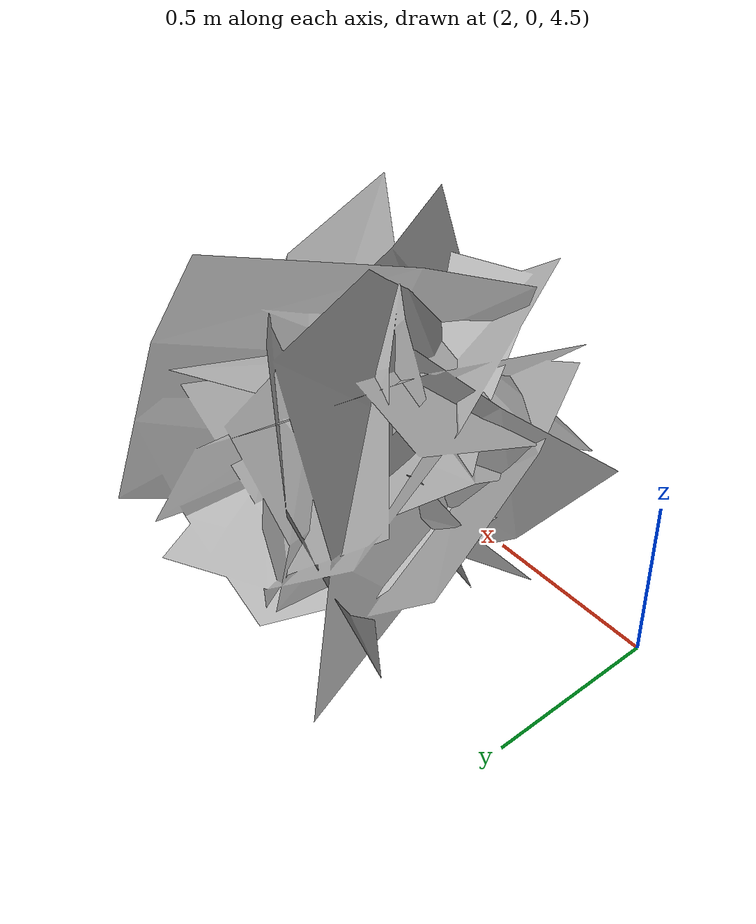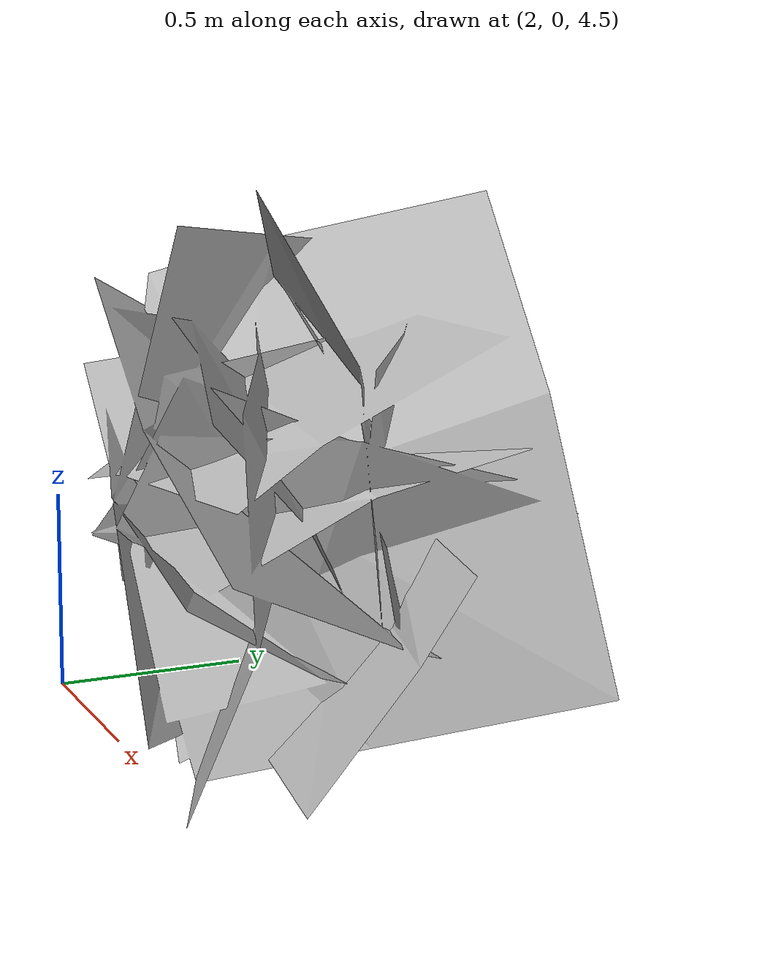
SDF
<?xml version="1.0" ?>
<sdf version="1.9">
  <model name="bush_02">
    <static>true</static>
    <link name="link">
      <collision name="collision">
        <pose>0 0 0.5 0 0 0</pose>
        <geometry>
          <box>
            <size>1.2 1.2 1.0</size>
          </box>
        </geometry>
      </collision>
      <visual name="visual">
        <geometry>
          <mesh>
            <uri>model://bush_02/meshes/Bush-02.obj</uri>
          </mesh>
        </geometry>
      </visual>
    </link>
  </model>
</sdf>
